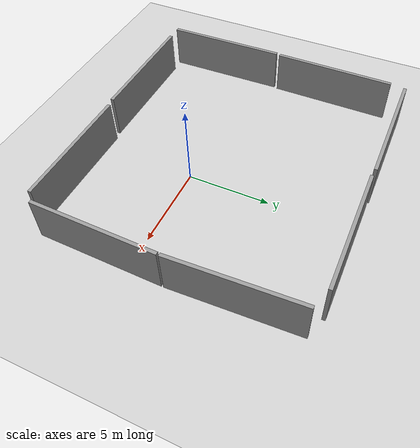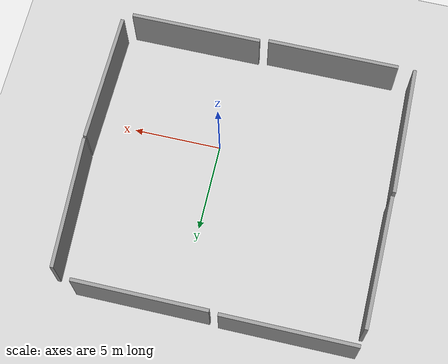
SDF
<sdf version="1.10">
 <world name="empty">
  <physics name="1ms" type="ignored">
   <max_step_size>0.001</max_step_size>
   <real_time_factor>1</real_time_factor>
   <real_time_update_rate>1000</real_time_update_rate>
  </physics>
  <plugin name="gz::sim::systems::Physics" filename="gz-sim-physics-system"/>
  <plugin name="gz::sim::systems::UserCommands" filename="gz-sim-user-commands-system"/>
  <plugin name="gz::sim::systems::SceneBroadcaster" filename="gz-sim-scene-broadcaster-system"/>
  <plugin name="gz::sim::systems::Contact" filename="gz-sim-contact-system"/>
  <gravity>0 0 -9.8000000000000007</gravity>
  <magnetic_field>5.5644999999999998e-06 2.2875799999999999e-05 -4.2388400000000002e-05</magnetic_field>
  <atmosphere type="adiabatic"/>
  <scene>
   <ambient>0.400000006 0.400000006 0.400000006 1</ambient>
   <background>0.699999988 0.699999988 0.699999988 1</background>
   <shadows>true</shadows>
  </scene>
  <model name="ground_plane">
   <static>true</static>
   <link name="link">
    <collision name="collision">
     <geometry><plane><normal>0 0 1</normal><size>100 100</size></plane></geometry>
    </collision>
    <visual name="visual">
     <geometry><plane><normal>0 0 1</normal><size>100 100</size></plane></geometry>
     <material>
      <ambient>0.800000012 0.800000012 0.800000012 1</ambient>
      <diffuse>0.800000012 0.800000012 0.800000012 1</diffuse>
      <specular>0.800000012 0.800000012 0.800000012 1</specular>
     </material>
    </visual>
    <inertial>
     <mass>1</mass>
     <inertia><ixx>1</ixx><ixy>0</ixy><ixz>0</ixz><iyy>1</iyy><iyz>0</iyz><izz>1</izz></inertia>
    </inertial>
   </link>
  </model>
  <model name="grey_wall">
   <static>true</static>
   <link name="link">
    <pose>0 0 1.3999999999999999 0 0 0</pose>
    <collision name="collision">
     <geometry><box><size>7.5 0.20000000000000001 2.7999999999999998</size></box></geometry>
    </collision>
    <visual name="visual">
     <cast_shadows>false</cast_shadows>
     <geometry><box><size>7.5 0.20000000000000001 2.7999999999999998</size></box></geometry>
     <material>
      <script>
       <uri>https://fuel.gazebosim.org/1.0/openrobotics/models/grey wall/3/files/materials/scripts</uri>
       <uri>https://fuel.gazebosim.org/1.0/openrobotics/models/grey wall/3/files/materials/textures</uri>
       <name>vrc/grey_wall</name>
      </script>
     </material>
    </visual>
    <inertial>
     <mass>1</mass>
     <inertia><ixx>1</ixx><ixy>0</ixy><ixz>0</ixz><iyy>1</iyy><iyz>0</iyz><izz>1</izz></inertia>
    </inertial>
   </link>
   <pose>2.7288458347320557 -5.8534698486328125 0 0 0 0</pose>
  </model>
  <model name="grey_wall_0">
   <static>true</static>
   <link name="link">
    <pose>0 0 1.3999999999999999 0 0 0</pose>
    <collision name="collision">
     <geometry><box><size>7.5 0.20000000000000001 2.7999999999999998</size></box></geometry>
    </collision>
    <visual name="visual">
     <cast_shadows>false</cast_shadows>
     <geometry><box><size>7.5 0.20000000000000001 2.7999999999999998</size></box></geometry>
     <material>
      <script>
       <uri>https://fuel.gazebosim.org/1.0/openrobotics/models/grey wall/3/files/materials/scripts</uri>
       <uri>https://fuel.gazebosim.org/1.0/openrobotics/models/grey wall/3/files/materials/textures</uri>
       <name>vrc/grey_wall</name>
      </script>
     </material>
    </visual>
    <inertial>
     <mass>1</mass>
     <inertia><ixx>1</ixx><ixy>0</ixy><ixz>0</ixz><iyy>1</iyy><iyz>0</iyz><izz>1</izz></inertia>
    </inertial>
   </link>
   <pose>-5.2598857879638672 -5.960169792175293 0 0 0 0</pose>
  </model>
  <model name="grey_wall_1">
   <static>true</static>
   <link name="link">
    <pose>0 0 1.3999999999999999 0 0 0</pose>
    <collision name="collision">
     <geometry><box><size>7.5 0.20000000000000001 2.7999999999999998</size></box></geometry>
    </collision>
    <visual name="visual">
     <cast_shadows>false</cast_shadows>
     <geometry><box><size>7.5 0.20000000000000001 2.7999999999999998</size></box></geometry>
     <material>
      <script>
       <uri>https://fuel.gazebosim.org/1.0/openrobotics/models/grey wall/3/files/materials/scripts</uri>
       <uri>https://fuel.gazebosim.org/1.0/openrobotics/models/grey wall/3/files/materials/textures</uri>
       <name>vrc/grey_wall</name>
      </script>
     </material>
    </visual>
    <inertial>
     <mass>1</mass>
     <inertia><ixx>1</ixx><ixy>0</ixy><ixz>0</ixz><iyy>1</iyy><iyz>0</iyz><izz>1</izz></inertia>
    </inertial>
   </link>
   <pose>-6.1056556329646234 10.162537742112715 0 0 0 0</pose>
  </model>
  <model name="grey_wall_2">
   <static>true</static>
   <link name="link">
    <pose>0 0 1.3999999999999999 0 0 0</pose>
    <collision name="collision">
     <geometry><box><size>7.5 0.20000000000000001 2.7999999999999998</size></box></geometry>
    </collision>
    <visual name="visual">
     <cast_shadows>false</cast_shadows>
     <geometry><box><size>7.5 0.20000000000000001 2.7999999999999998</size></box></geometry>
     <material>
      <script>
       <uri>https://fuel.gazebosim.org/1.0/openrobotics/models/grey wall/3/files/materials/scripts</uri>
       <uri>https://fuel.gazebosim.org/1.0/openrobotics/models/grey wall/3/files/materials/textures</uri>
       <name>vrc/grey_wall</name>
      </script>
     </material>
    </visual>
    <inertial>
     <mass>1</mass>
     <inertia><ixx>1</ixx><ixy>0</ixy><ixz>0</ixz><iyy>1</iyy><iyz>0</iyz><izz>1</izz></inertia>
    </inertial>
   </link>
   <pose>1.8748740357434777 10.089886249398138 0 0 0 0</pose>
  </model>
  <model name="grey_wall_3">
   <static>true</static>
   <link name="link">
    <pose>0 0 1.3999999999999999 0 0 0</pose>
    <collision name="collision">
     <geometry><box><size>7.5 0.20000000000000001 2.7999999999999998</size></box></geometry>
    </collision>
    <visual name="visual">
     <cast_shadows>false</cast_shadows>
     <geometry><box><size>7.5 0.20000000000000001 2.7999999999999998</size></box></geometry>
     <material>
      <script>
       <uri>https://fuel.gazebosim.org/1.0/openrobotics/models/grey wall/3/files/materials/scripts</uri>
       <uri>https://fuel.gazebosim.org/1.0/openrobotics/models/grey wall/3/files/materials/textures</uri>
       <name>vrc/grey_wall</name>
      </script>
     </material>
    </visual>
    <inertial>
     <mass>1</mass>
     <inertia><ixx>1</ixx><ixy>0</ixy><ixz>0</ixz><iyy>1</iyy><iyz>0</iyz><izz>1</izz></inertia>
    </inertial>
   </link>
   <pose>6.9158282279968253 5.9433279037475595 -2.2204460492503131e-16 0 0 1.6189099786638441</pose>
  </model>
  <model name="grey_wall_4">
   <static>true</static>
   <link name="link">
    <pose>0 0 1.3999999999999999 0 0 0</pose>
    <collision name="collision">
     <geometry><box><size>7.5 0.20000000000000001 2.7999999999999998</size></box></geometry>
    </collision>
    <visual name="visual">
     <cast_shadows>false</cast_shadows>
     <geometry><box><size>7.5 0.20000000000000001 2.7999999999999998</size></box></geometry>
     <material>
      <script>
       <uri>https://fuel.gazebosim.org/1.0/openrobotics/models/grey wall/3/files/materials/scripts</uri>
       <uri>https://fuel.gazebosim.org/1.0/openrobotics/models/grey wall/3/files/materials/textures</uri>
       <name>vrc/grey_wall</name>
      </script>
     </material>
    </visual>
    <inertial>
     <mass>1</mass>
     <inertia><ixx>1</ixx><ixy>0</ixy><ixz>0</ixz><iyy>1</iyy><iyz>0</iyz><izz>1</izz></inertia>
    </inertial>
   </link>
   <pose>7.0355114936828613 -1.6671749353408816 -2.2204460492503131e-16 0 0 1.5547099753827278</pose>
  </model>
  <model name="grey_wall_5">
   <static>true</static>
   <link name="link">
    <pose>0 0 1.3999999999999999 0 0 0</pose>
    <collision name="collision">
     <geometry><box><size>7.5 0.20000000000000001 2.7999999999999998</size></box></geometry>
    </collision>
    <visual name="visual">
     <cast_shadows>false</cast_shadows>
     <geometry><box><size>7.5 0.20000000000000001 2.7999999999999998</size></box></geometry>
     <material>
      <script>
       <uri>https://fuel.gazebosim.org/1.0/openrobotics/models/grey wall/3/files/materials/scripts</uri>
       <uri>https://fuel.gazebosim.org/1.0/openrobotics/models/grey wall/3/files/materials/textures</uri>
       <name>vrc/grey_wall</name>
      </script>
     </material>
    </visual>
    <inertial>
     <mass>1</mass>
     <inertia><ixx>1</ixx><ixy>0</ixy><ixz>0</ixz><iyy>1</iyy><iyz>0</iyz><izz>1</izz></inertia>
    </inertial>
   </link>
   <pose>-9.9987974166870117 5.493079185485839 0 0 0 1.5655998976137926</pose>
  </model>
  <model name="grey_wall_6">
   <static>true</static>
   <link name="link">
    <pose>0 0 1.3999999999999999 0 0 0</pose>
    <collision name="collision">
     <geometry><box><size>7.5 0.20000000000000001 2.7999999999999998</size></box></geometry>
    </collision>
    <visual name="visual">
     <cast_shadows>false</cast_shadows>
     <geometry><box><size>7.5 0.20000000000000001 2.7999999999999998</size></box></geometry>
     <material>
      <script>
       <uri>https://fuel.gazebosim.org/1.0/openrobotics/models/grey wall/3/files/materials/scripts</uri>
       <uri>https://fuel.gazebosim.org/1.0/openrobotics/models/grey wall/3/files/materials/textures</uri>
       <name>vrc/grey_wall</name>
      </script>
     </material>
    </visual>
    <inertial>
     <mass>1</mass>
     <inertia><ixx>1</ixx><ixy>0</ixy><ixz>0</ixz><iyy>1</iyy><iyz>0</iyz><izz>1</izz></inertia>
    </inertial>
   </link>
   <pose>-10.020863533020018 -2.229665994644165 -2.2204460492503131e-16 0 0 -1.5543401160419283</pose>
  </model>
  <light name="sun" type="directional">
   <pose>0 0 10 0 0 0</pose>
   <intensity>1</intensity>
   <direction>-0.5 0.10000000000000001 -0.90000000000000002</direction>
   <diffuse>0.800000012 0.800000012 0.800000012 1</diffuse>
   <specular>0.200000003 0.200000003 0.200000003 1</specular>
   <attenuation>
    <range>1000</range>
    <linear>0.0099999997764825821</linear>
    <constant>0.89999997615814209</constant>
    <quadratic>0.0010000000474974513</quadratic>
   </attenuation>
   <spot><inner_angle>0</inner_angle><outer_angle>0</outer_angle><falloff>0</falloff></spot>
  </light>
 </world>
</sdf>
